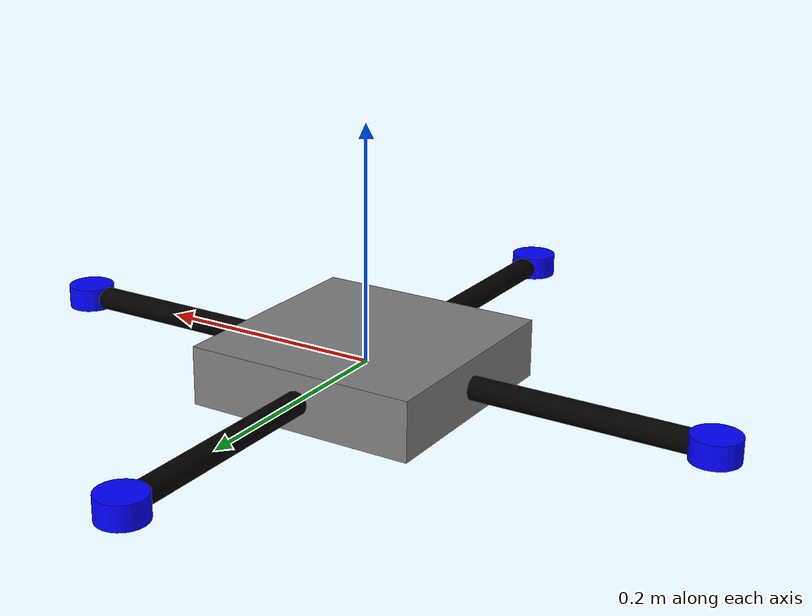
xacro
<?xml version="1.0"?>
<robot name="my_quadracopter" xmlns:xacro="http://ros.org/wiki/xacro">

  <!-- Materiales -->
  <material name="gray"><color rgba="0.5 0.5 0.5 1.0"/></material>
  <material name="black"><color rgba="0.0 0.0 0.0 1.0"/></material>
  <material name="blue"><color rgba="0.0 0.0 1.0 1.0"/></material>

  <!-- Cuerpo central -->
  <link name="base_link">
    <visual>
      <origin xyz="0 0 0" rpy="0 0 0"/>
      <geometry><box size="0.2 0.2 0.05"/></geometry>
      <material name="gray"/>
    </visual>
    <collision>
      <origin xyz="0 0 0" rpy="0 0 0"/>
      <geometry><box size="0.2 0.2 0.05"/></geometry>
    </collision>
    <inertial>
      <mass value="1.0"/>
      <origin xyz="0 0 0" rpy="0 0 0"/>
      <inertia ixx="0.001" iyy="0.001" izz="0.001" ixy="0" ixz="0" iyz="0"/>
    </inertial>
  </link>

  <!-- Macro de brazo con motor -->
  <xacro:macro name="arm_with_motor" params="name parent dx dy yaw">
    <xacro:property name="arm_length" value="0.2"/>
    <xacro:property name="ox" value="${dx * 0.5}"/>
    <xacro:property name="oy" value="${dy * 0.5}"/>
    <xacro:property name="mx" value="${dx}"/>        <!-- 🔵 desplazamiento respecto al centro del brazo -->
    <xacro:property name="my" value="${dy}"/>

    <!-- Brazo -->
    <link name="${name}_arm">
      <visual>
        <origin xyz="${ox} ${oy} 0" rpy="1.5708 0 ${yaw}"/>
        <geometry>
          <cylinder length="${arm_length}" radius="0.01"/>
        </geometry>
        <material name="black"/>
      </visual>
      <collision>
        <origin xyz="${ox} ${oy} 0" rpy="1.5708 0 ${yaw}"/>
        <geometry>
          <cylinder length="${arm_length}" radius="0.01"/>
        </geometry>
      </collision>
      <inertial>
        <mass value="0.05"/>
        <origin xyz="0 0 0" rpy="0 0 0"/>
        <inertia ixx="1e-5" iyy="1e-5" izz="1e-5" ixy="0" ixz="0" iyz="0"/>
      </inertial>
    </link>

    <joint name="joint_${name}_arm" type="fixed">
      <parent link="${parent}"/>
      <child link="${name}_arm"/>
      <origin xyz="${ox} ${oy} 0" rpy="0 0 0"/>
    </joint>

    <!-- Motor -->
    <link name="${name}_motor">
      <visual>
        <origin xyz="0 0 0" rpy="0 0 0"/>
        <geometry>
          <cylinder length="0.02" radius="0.02"/>
        </geometry>
        <material name="blue"/>
      </visual>
      <collision>
        <origin xyz="0 0 0" rpy="0 0 0"/>
        <geometry>
          <cylinder length="0.02" radius="0.02"/>
        </geometry>
      </collision>
      <inertial>
        <mass value="0.05"/>
        <origin xyz="0 0 0" rpy="0 0 0"/>
        <inertia ixx="1e-5" iyy="1e-5" izz="1e-5" ixy="0" ixz="0" iyz="0"/>
      </inertial>
    </link>

    <joint name="joint_${name}_motor" type="continuous">
      <parent link="${name}_arm"/>
      <child link="${name}_motor"/>
      <origin xyz="${mx} ${my} 0" rpy="0 0 0"/>
      <axis xyz="0 0 1"/>
    </joint>

  </xacro:macro>

  <!-- Cuatro brazos con motores -->
  <xacro:arm_with_motor name="front"  parent="base_link" dx="0" dy="0.2" yaw="0"/>
  <xacro:arm_with_motor name="back"   parent="base_link" dx="0" dy="-0.2" yaw="0"/>
  <xacro:arm_with_motor name="left"   parent="base_link" dx="-0.2" dy="0" yaw="1.5708"/>
  <xacro:arm_with_motor name="right"  parent="base_link" dx="0.2" dy="0" yaw="1.5708"/>

  <gazebo>
    <plugin name="quadcopter_plugin" filename="libquadcopter_plugin.so">
      <ros_topic>/pwm_signals</ros_topic>
    </plugin>
  </gazebo>

</robot>
